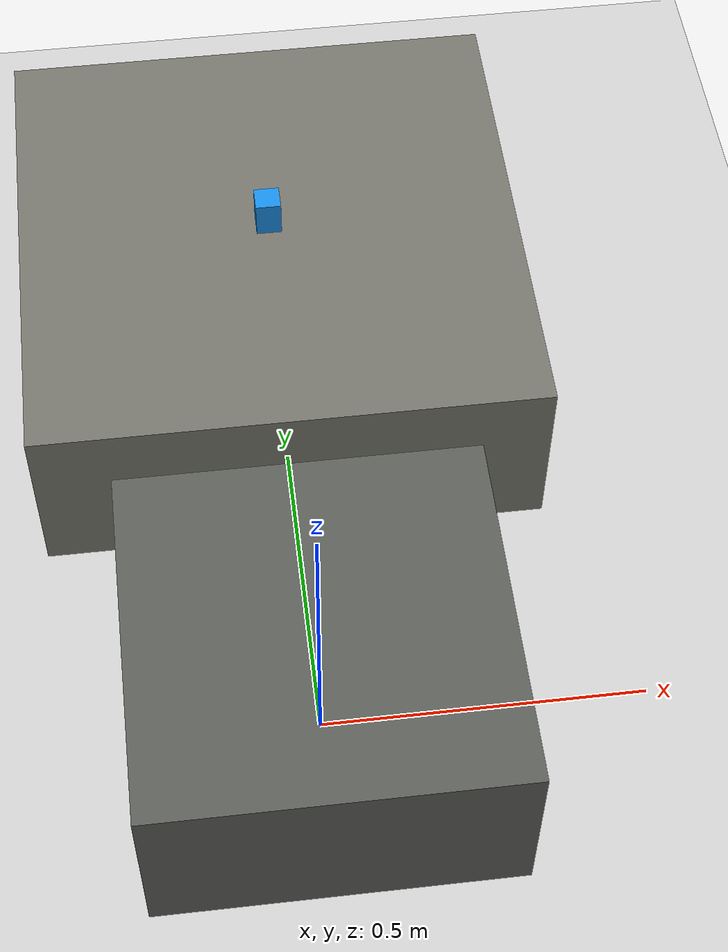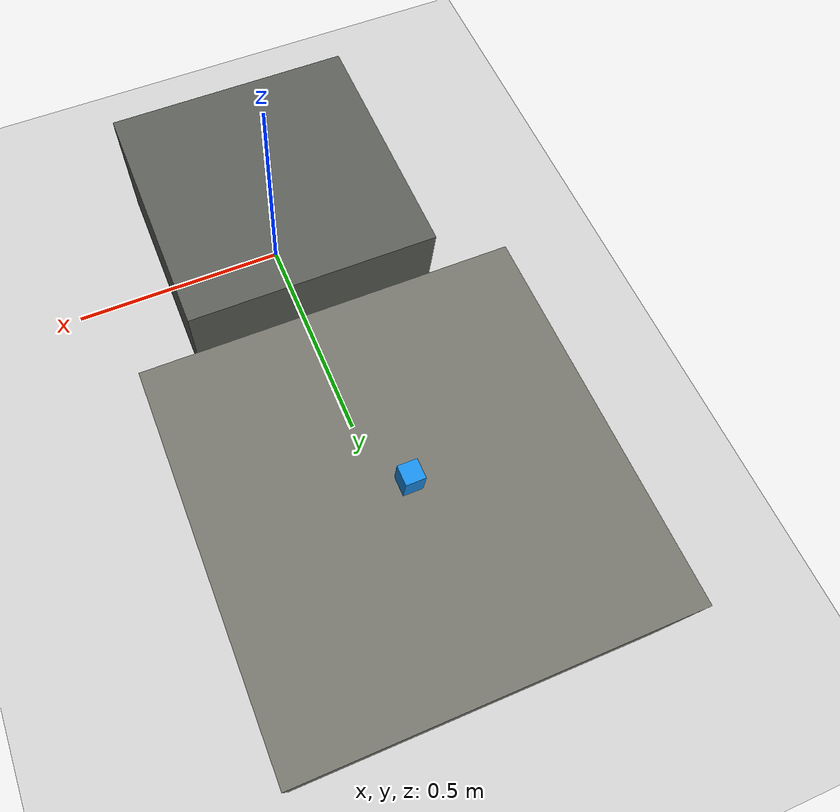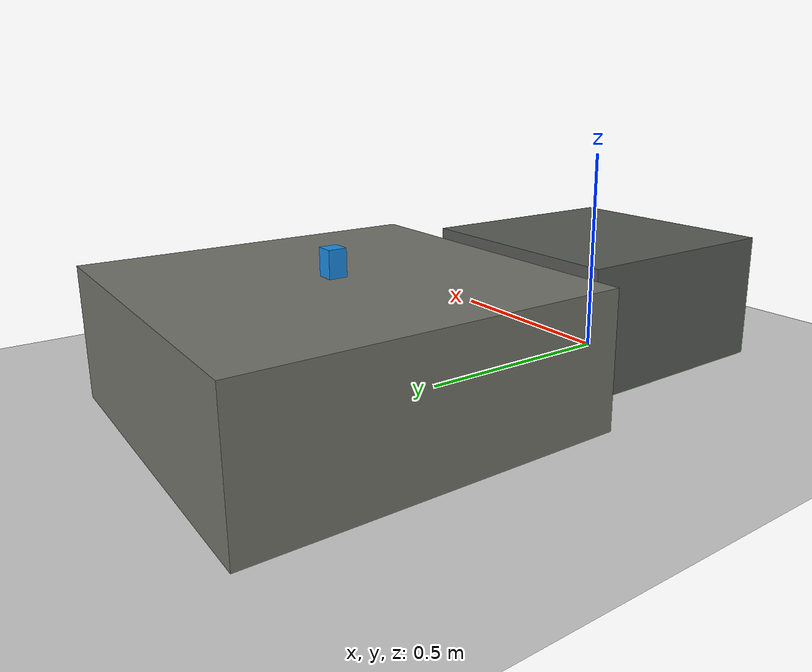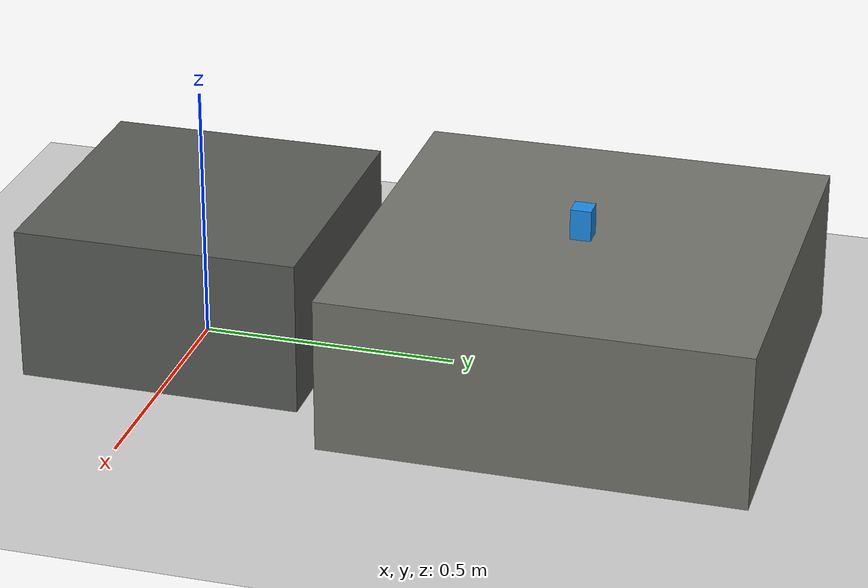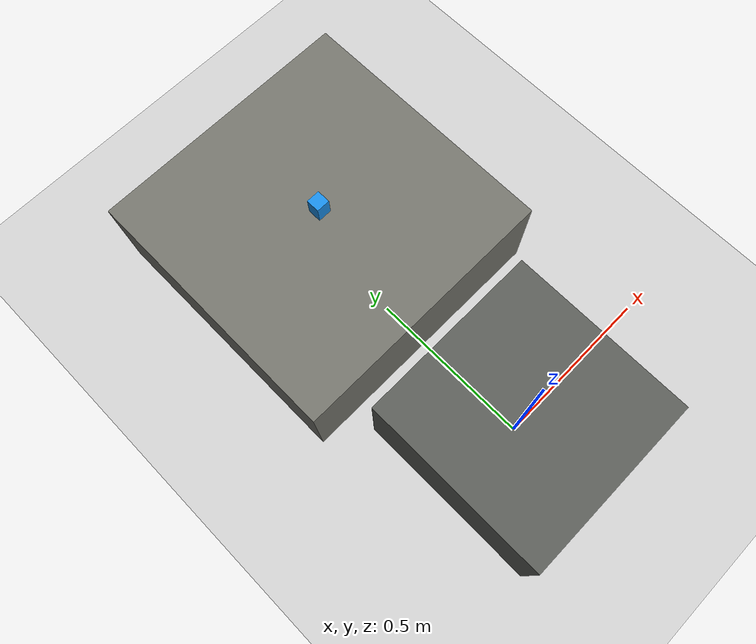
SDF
<?xml version="1.0" ?>
<sdf version="1.7">
  <world name="table_pick_ign">
    <plugin
      filename="ignition-gazebo-physics-system"
      name="ignition::gazebo::systems::Physics"/>
    <plugin
      filename="ignition-gazebo-user-commands-system"
      name="ignition::gazebo::systems::UserCommands"/>
    <plugin
      filename="ignition-gazebo-scene-broadcaster-system"
      name="ignition::gazebo::systems::SceneBroadcaster"/>
    <plugin
      filename="ignition-gazebo-contact-system"
      name="ignition::gazebo::systems::Contact"/>
    <plugin
      filename="ignition-gazebo-sensors-system"
      name="ignition::gazebo::systems::Sensors">
      <render_engine>ogre2</render_engine>
    </plugin>

    <physics name="default_physics" type="ignored">
      <max_step_size>0.001</max_step_size>
      <real_time_factor>1.0</real_time_factor>
    </physics>

    <gravity>0 0 -9.81</gravity>

    <light name="sun" type="directional">
      <cast_shadows>true</cast_shadows>
      <pose>0 0 10 0 0 0</pose>
      <diffuse>0.8 0.8 0.8 1</diffuse>
      <specular>0.2 0.2 0.2 1</specular>
      <attenuation>
        <range>1000</range>
        <constant>0.9</constant>
        <linear>0.01</linear>
        <quadratic>0.001</quadratic>
      </attenuation>
      <direction>-0.5 0.1 -0.9</direction>
    </light>

    <model name="ground_plane">
      <static>true</static>
      <link name="link">
        <collision name="collision">
          <geometry>
            <plane>
              <normal>0 0 1</normal>
              <size>100 100</size>
            </plane>
          </geometry>
        </collision>
        <visual name="visual">
          <geometry>
            <plane>
              <normal>0 0 1</normal>
              <size>100 100</size>
            </plane>
          </geometry>
          <material>
            <ambient>0.8 0.8 0.8 1</ambient>
            <diffuse>0.8 0.8 0.8 1</diffuse>
          </material>
        </visual>
      </link>
    </model>

    <model name="pick_table">
      <static>true</static>
      <pose>0 0.75 0.15 0 0 0</pose>
      <link name="table_link">
        <collision name="table_collision">
          <geometry>
            <box>
              <size>0.8 0.8 0.30</size>
            </box>
          </geometry>
          <surface>
            <friction>
              <ode>
                <mu>1.5</mu>
                <mu2>1.5</mu2>
              </ode>
            </friction>
          </surface>
        </collision>
        <visual name="table_visual">
          <geometry>
            <box>
              <size>0.8 0.8 0.30</size>
            </box>
          </geometry>
          <material>
            <ambient>0.45 0.45 0.42 1</ambient>
            <diffuse>0.45 0.45 0.42 1</diffuse>
          </material>
        </visual>
      </link>
    </model>

    <model name="robot_platform">
      <static>true</static>
      <pose>0 0 0.15 0 0 0</pose>
      <link name="platform_link">
        <collision name="platform_collision">
          <geometry>
            <box>
              <size>0.55 0.55 0.30</size>
            </box>
          </geometry>
          <surface>
            <friction>
              <ode>
                <mu>5.0</mu>
                <mu2>5.0</mu2>
              </ode>
            </friction>
            <contact>
              <ode>
                <kp>100000</kp>
                <kd>1</kd>
                <max_vel>0.05</max_vel>
                <min_depth>0.001</min_depth>
              </ode>
            </contact>
          </surface>
        </collision>
        <visual name="platform_visual">
          <geometry>
            <box>
              <size>0.55 0.55 0.30</size>
            </box>
          </geometry>
          <material>
            <ambient>0.35 0.36 0.34 1</ambient>
            <diffuse>0.35 0.36 0.34 1</diffuse>
          </material>
        </visual>
      </link>
    </model>

    <model name="pick_box">
      <static>false</static>
      <pose>0 0.75 0.33 0 0 0</pose>
      <link name="box_link">
        <inertial>
          <mass>0.05</mass>
          <inertia>
            <ixx>0.0000217</ixx>
            <iyy>0.0000217</iyy>
            <izz>0.0000133</izz>
            <ixy>0</ixy>
            <ixz>0</ixz>
            <iyz>0</iyz>
          </inertia>
        </inertial>
        <collision name="box_collision">
          <geometry>
            <box>
              <size>0.04 0.04 0.06</size>
            </box>
          </geometry>
          <surface>
            <friction>
              <ode>
                <mu>1.5</mu>
                <mu2>1.5</mu2>
              </ode>
            </friction>
          </surface>
        </collision>
        <visual name="box_visual">
          <geometry>
            <box>
              <size>0.04 0.04 0.06</size>
            </box>
          </geometry>
          <material>
            <ambient>0.1 0.55 0.9 1</ambient>
            <diffuse>0.1 0.55 0.9 1</diffuse>
          </material>
        </visual>
      </link>
    </model>
  </world>
</sdf>
